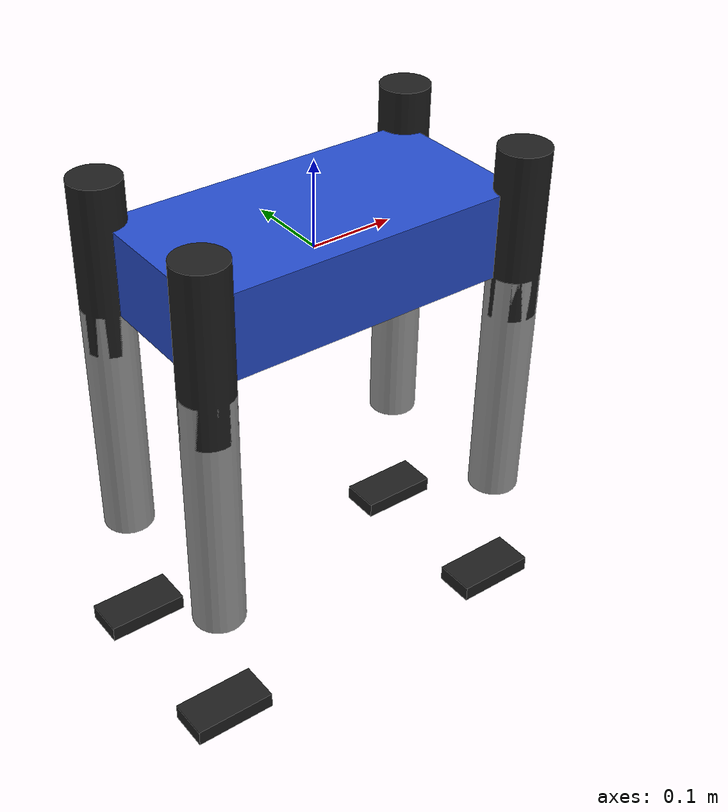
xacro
<?xml version="1.0"?>
<robot xmlns:xacro="http://www.ros.org/wiki/xacro" name="quadruped">

  <!-- Constants for reuse -->
  <xacro:property name="leg_length_upper" value="0.2"/>   <!-- 20cm upper leg -->
  <xacro:property name="leg_length_lower" value="0.3"/>   <!-- 30cm lower leg -->
  <xacro:property name="foot_size" value="0.1 0.05 0.02"/> <!-- 10cm x 5cm x 2cm foot -->
  <xacro:property name="hip_mass" value="1.0"/>           <!-- Mass values -->
  <xacro:property name="knee_mass" value="1.0"/>
  <xacro:property name="foot_mass" value="0.5"/>
  <xacro:property name="base_mass" value="7.0"/>          <!-- Base 7kg -->
  <xacro:property name="leg_radius" value="0.03"/>        <!-- Leg thickness -->

  <!-- Base link -->
  <link name="base_link">
    <inertial>
      <origin xyz="0 0 0"/>
      <mass value="${base_mass}"/>
      <inertia ixx="0.1" ixy="0.0" ixz="0.0" iyy="0.1" iyz="0.0" izz="0.1"/>
    </inertial>
    <visual>
      <geometry>
        <box size="0.4 0.2 0.1"/> <!-- Base size: 40cm x 20cm x 10cm -->
      </geometry>
      <material name="blue"/>
    </visual>
    <collision>
      <geometry>
        <box size="0.4 0.2 0.1"/>
      </geometry>
    </collision>
  </link>

  <!-- Macro for the leg definition -->
  <xacro:macro name="leg" params="prefix x y z">
    <!-- Hip joint -->
    <joint name="${prefix}_hip_joint" type="continuous">
      <parent link="base_link"/>
      <child link="${prefix}_upper_leg"/>
      <origin xyz="${x} ${y} ${z}" rpy="0 0 0"/>
      <axis xyz="0 1 0"/>
      <limit lower="-1.57" upper="1.57" effort="20" velocity="2.0"/>
    </joint>

    <!-- Upper leg -->
    <link name="${prefix}_upper_leg">
      <inertial>
        <origin xyz="0 0 -${leg_length_upper/2}"/>
        <mass value="${hip_mass}"/>
        <inertia ixx="0.01" ixy="0.0" ixz="0.0" iyy="0.01" iyz="0.0" izz="0.01"/>
      </inertial>
      <visual>
        <geometry>
          <cylinder radius="${leg_radius}" length="${leg_length_upper}"/>
        </geometry>
        <material name="black"/>
      </visual>
      <collision>
        <geometry>
          <cylinder radius="${leg_radius}" length="${leg_length_upper}"/>
        </geometry>
      </collision>
    </link>

    <!-- Knee joint -->
    <joint name="${prefix}_knee_joint" type="continuous">
      <parent link="${prefix}_upper_leg"/>
      <child link="${prefix}_lower_leg"/>
      <origin xyz="0 0 -${leg_length_upper}" rpy="0 0 0"/>
      <axis xyz="0 1 0"/>
      <limit lower="-1.57" upper="0" effort="20" velocity="2.0"/>
    </joint>

    <!-- Lower leg -->
    <link name="${prefix}_lower_leg">
      <inertial>
        <origin xyz="0 0 -${leg_length_lower/2}"/>
        <mass value="${knee_mass}"/>
        <inertia ixx="0.01" ixy="0.0" ixz="0.0" iyy="0.01" iyz="0.0" izz="0.01"/>
      </inertial>
      <visual>
        <geometry>
          <cylinder radius="${leg_radius}" length="${leg_length_lower}"/>
        </geometry>
        <material name="grey"/>
      </visual>
      <collision>
        <geometry>
          <cylinder radius="${leg_radius}" length="${leg_length_lower}"/>
        </geometry>
      </collision>
    </link>

    <!-- Ankle joint -->
    <joint name="${prefix}_ankle_joint" type="continuous">
      <parent link="${prefix}_lower_leg"/>
      <child link="${prefix}_foot"/>
      <origin xyz="0 0 -${leg_length_lower}" rpy="0 0 0"/>
      <axis xyz="1 0 0"/>
      <limit lower="-0.785" upper="0.785" effort="20" velocity="2.0"/>
    </joint>

    <!-- Foot -->
    <link name="${prefix}_foot">
      <inertial>
        <origin xyz="0 0 -0.05"/>
        <mass value="${foot_mass}"/>
        <inertia ixx="0.01" ixy="0.0" ixz="0.0" iyy="0.01" iyz="0.0" izz="0.01"/>
      </inertial>
      <visual>
        <geometry>
          <box size="${foot_size}"/>
        </geometry>
        <material name="black"/>
      </visual>
      <collision>
        <geometry>
          <box size="${foot_size}"/>
        </geometry>
      </collision>
    </link>
  </xacro:macro>

  <!-- Define the four legs -->
  <!-- Front Left Leg -->
  <xacro:leg prefix="FL" x="0.2" y="0.1" z="0"/>

  <!-- Front Right Leg -->
  <xacro:leg prefix="FR" x="0.2" y="-0.1" z="0"/>

  <!-- Back Left Leg -->
  <xacro:leg prefix="BL" x="-0.2" y="0.1" z="0"/>

  <!-- Back Right Leg -->
  <xacro:leg prefix="BR" x="-0.2" y="-0.1" z="0"/>

</robot>
